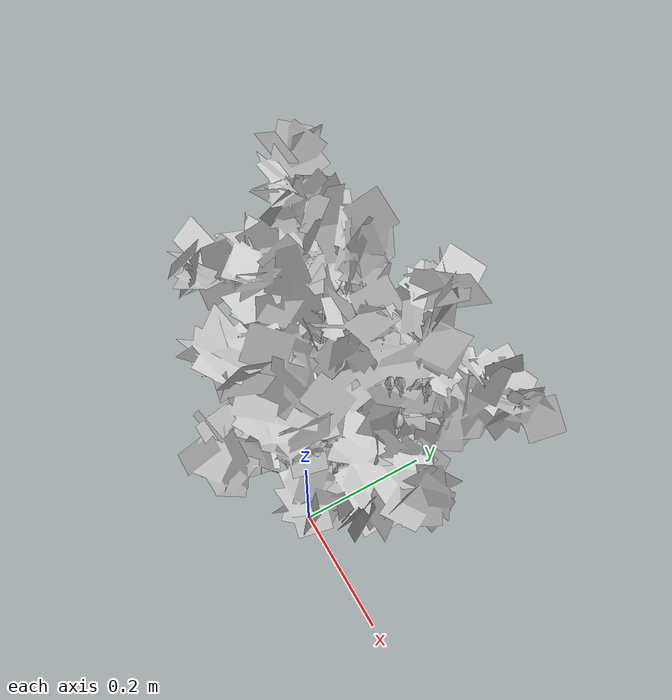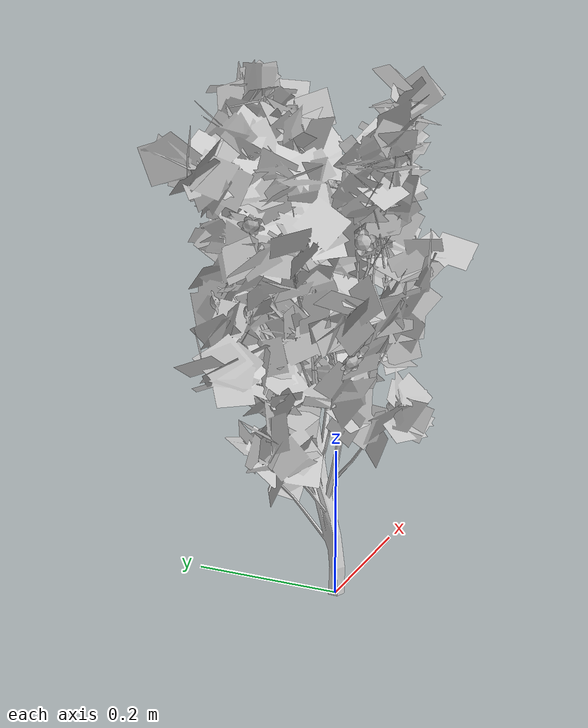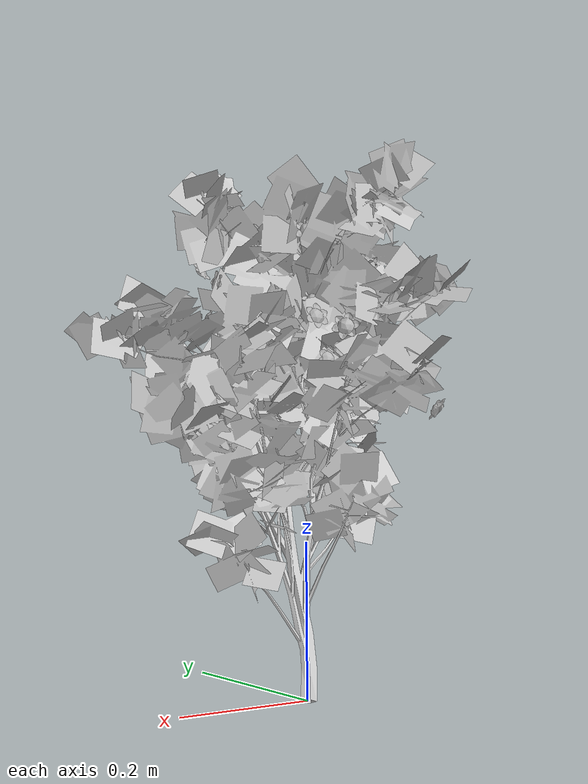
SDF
<?xml version="1.0" ?>
<sdf version="1.6">
  <model name="tree-flowers">
    <!--Skew-Seed:4145387398-->
    <static>true</static>
    <link name="link"/>
    <include>
      <uri>model://tree-mesh</uri>
      <pose>0 0 0 0 0 0</pose>
    </include>
    <joint name="tree_joint" type="fixed">
      <child>tree-mesh::link</child>
      <parent>link</parent>
    </joint>
    <include>
      <name>bramble_0</name>
      <uri>model://bramble</uri>
      <pose> -0.061915837737863244 -0.05899740385460253 0.49712183350589434 -3.3612040221009845 2.0951186498701615 0.0</pose>
    </include>
    <joint name="flower_joint_0" type="fixed">
      <child>bramble_0::flower_link</child>
      <parent>link</parent>
    </joint>
    <include>
      <name>bramble_1</name>
      <uri>model://bramble</uri>
      <pose> 0.10896650316050693 0.08925994576677986 0.5888089326809042 -0.05759273000026277 2.094621147042338 0.0</pose>
    </include>
    <joint name="flower_joint_1" type="fixed">
      <child>bramble_1::flower_link</child>
      <parent>link</parent>
    </joint>
    <include>
      <name>bramble_2</name>
      <uri>model://bramble</uri>
      <pose> 0.07935146044537447 0.1236097052076896 0.4775530344103961 -1.013444566834452 1.8039089601898344 0.0</pose>
    </include>
    <joint name="flower_joint_2" type="fixed">
      <child>bramble_2::flower_link</child>
      <parent>link</parent>
    </joint>
    <include>
      <name>bramble_3</name>
      <uri>model://bramble</uri>
      <pose> 0.05042289467372829 0.12523796584814173 0.528337988821534 -1.0323972360038964 1.3712782307273548 0.0</pose>
    </include>
    <joint name="flower_joint_3" type="fixed">
      <child>bramble_3::flower_link</child>
      <parent>link</parent>
    </joint>
    <include>
      <name>bramble_4</name>
      <uri>model://bramble</uri>
      <pose> -0.13492626369710092 0.054874014065330066 0.5263086111086546 -3.4487553809566025 0.9841830430075639 0.0</pose>
    </include>
    <joint name="flower_joint_4" type="fixed">
      <child>bramble_4::flower_link</child>
      <parent>link</parent>
    </joint>
    <include>
      <name>bramble_5</name>
      <uri>model://bramble</uri>
      <pose> 0.06501124516953355 0.07815886820517803 0.5151647895843621 -1.125009385147292 1.507753047556275 0.0</pose>
    </include>
    <joint name="flower_joint_5" type="fixed">
      <child>bramble_5::flower_link</child>
      <parent>link</parent>
    </joint>
    <include>
      <name>bramble_6</name>
      <uri>model://bramble</uri>
      <pose> -0.14919183817873968 -0.07830143859538118 0.37622271173215294 -4.124731687511124 0.8014947883204033 0.0</pose>
    </include>
    <joint name="flower_joint_6" type="fixed">
      <child>bramble_6::flower_link</child>
      <parent>link</parent>
    </joint>
    <include>
      <name>bramble_7</name>
      <uri>model://bramble</uri>
      <pose> 0.11401179890375956 -0.04569384092730451 0.580517910216643 -0.1557594415510586 1.1129626208345482 0.0</pose>
    </include>
    <joint name="flower_joint_7" type="fixed">
      <child>bramble_7::flower_link</child>
      <parent>link</parent>
    </joint>
    <include>
      <name>bramble_8</name>
      <uri>model://bramble</uri>
      <pose> -0.13069428048876425 0.10250510322453425 0.4237705636208271 -2.1485417416708983 1.1184753282656836 0.0</pose>
    </include>
    <joint name="flower_joint_8" type="fixed">
      <child>bramble_8::flower_link</child>
      <parent>link</parent>
    </joint>
    <include>
      <name>bramble_9</name>
      <uri>model://bramble</uri>
      <pose> -0.05533427420287351 0.06029611881982818 0.5007141821185317 -2.405319269308283 2.302570041449468 0.0</pose>
    </include>
    <joint name="flower_joint_9" type="fixed">
      <child>bramble_9::flower_link</child>
      <parent>link</parent>
    </joint>
    <include>
      <name>bramble_10</name>
      <uri>model://bramble</uri>
      <pose> 0.11481861428770848 0.05984670269126894 0.5248369895419511 -0.8273543830820964 1.337656664122611 0.0</pose>
    </include>
    <joint name="flower_joint_10" type="fixed">
      <child>bramble_10::flower_link</child>
      <parent>link</parent>
    </joint>
    <include>
      <name>bramble_11</name>
      <uri>model://bramble</uri>
      <pose> -0.10001449534771231 0.07234102894553297 0.4055384217316587 -1.8844192468694498 1.4434515595164163 0.0</pose>
    </include>
    <joint name="flower_joint_11" type="fixed">
      <child>bramble_11::flower_link</child>
      <parent>link</parent>
    </joint>
    <include>
      <name>bramble_12</name>
      <uri>model://bramble</uri>
      <pose> -0.08588803538558538 0.10302140058944952 0.4502445058027125 -2.733493030571256 1.606178910507526 0.0</pose>
    </include>
    <joint name="flower_joint_12" type="fixed">
      <child>bramble_12::flower_link</child>
      <parent>link</parent>
    </joint>
    <include>
      <name>bramble_13</name>
      <uri>model://bramble</uri>
      <pose> -0.1049238025961771 0.10714658828806752 0.38425572759780735 -2.8711353509780997 1.3888982600325348 0.0</pose>
    </include>
    <joint name="flower_joint_13" type="fixed">
      <child>bramble_13::flower_link</child>
      <parent>link</parent>
    </joint>
    <include>
      <name>bramble_14</name>
      <uri>model://bramble</uri>
      <pose> 0.1007122768557682 -0.03774929655172473 0.5679685034687973 1.1221668446604207 1.0632058993160376 0.0</pose>
    </include>
    <joint name="flower_joint_14" type="fixed">
      <child>bramble_14::flower_link</child>
      <parent>link</parent>
    </joint>
    <include>
      <name>bramble_15</name>
      <uri>model://bramble</uri>
      <pose> 0.09268075040964513 0.07166584111032762 0.5712017665130911 -1.2673003190370022 1.67238627416224 0.0</pose>
    </include>
    <joint name="flower_joint_15" type="fixed">
      <child>bramble_15::flower_link</child>
      <parent>link</parent>
    </joint>
    <include>
      <name>bramble_16</name>
      <uri>model://bramble</uri>
      <pose> -0.0751886050730808 0.10257157404857348 0.5783222097362876 -2.2266556627376968 1.5058031538868106 0.0</pose>
    </include>
    <joint name="flower_joint_16" type="fixed">
      <child>bramble_16::flower_link</child>
      <parent>link</parent>
    </joint>
  </model>
</sdf>

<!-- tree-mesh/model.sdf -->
<sdf version="1.6">
  <model name="tree-mesh">
    <static>true</static>
    <link name="link">

      <collision name="collision">
        <geometry>
          <mesh>
            <uri>model://tree-mesh/meshes/new_tree.dae</uri>
            <scale>0.0625 0.0625 0.0625</scale>
          </mesh>
        </geometry>
      </collision>

      <!-- simplified collision for sake of speed since leaves shouldn't be blocking anyway -->

      <visual name="leaves">
        <geometry>
          <mesh>
            <uri>model://tree-mesh/meshes/leaves.dae</uri>
            <scale>0.0325 0.0325 0.0325</scale>
          </mesh>
        </geometry>
        <material>
          <script>
            <uri>model://tree-mesh/materials/scripts/</uri>
            <uri>model://tree-mesh/materials/textures/</uri>
            <name>NewTree/Branch</name>
          </script>
        </material>
      </visual>
      <visual name="bark">
        <geometry>
          <mesh>
            <uri>model://tree-mesh/meshes/bark.dae</uri>
            <scale>0.0325 0.0325 0.0325</scale>
          </mesh>
        </geometry>
        <material>
          <script>
            <uri>model://tree-mesh/materials/scripts/</uri>
            <uri>model://tree-mesh/materials/textures/</uri>
            <name>NewTree/Bark</name>
          </script>
        </material>
      </visual>
    </link>
  </model>
</sdf>

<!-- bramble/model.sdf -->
<sdf version="1.6">
  <model name="bramble">
    <static>true</static>
    <link name="flower_link">
      <collision name="body_collision">
        <geometry>
          <mesh>
            <uri>model://bramble/meshes/bramble.dae</uri>
            <scale>0.2 0.2 0.2</scale>
          </mesh>
        </geometry>
      </collision>
      <visual name="petals">
        <geometry>
          <mesh>
            <uri>model://bramble/meshes/bramble.dae</uri>
            <scale>0.2 0.2 0.2</scale>
            <submesh>
              <name>petal</name>
            </submesh>
          </mesh>
        </geometry>
        <material>
          <script>
            <uri>model://bramble/materials/scripts/</uri>
            <uri>model://bramble/materials/textures/</uri>
            <name>Bramble/Petal</name>
          </script>
        </material>
      </visual>
      <visual name="carpel">
        <geometry>
          <mesh>
            <uri>model://bramble/meshes/bramble.dae</uri>
            <scale>0.2 0.2 0.2</scale>
            <submesh>
              <name>carpel</name>
            </submesh>
          </mesh>
        </geometry>
        <material>
          <script>
            <uri>model://bramble/materials/scripts/</uri>
            <uri>model://bramble/materials/textures/</uri>
            <name>Bramble/Carpel</name>
          </script>
        </material>
      </visual>
      <visual name="stamen">
        <geometry>
          <mesh>
            <uri>model://bramble/meshes/bramble.dae</uri>
            <scale>0.2 0.2 0.2</scale>
            <submesh>
              <name>stamen</name>
            </submesh>
          </mesh>
        </geometry>
        <material>
          <script>
            <uri>model://bramble/materials/scripts/</uri>
            <uri>model://bramble/materials/textures/</uri>
            <name>Bramble/Stamen</name>
          </script>
        </material>
      </visual>
    </link>
  </model>
</sdf>
